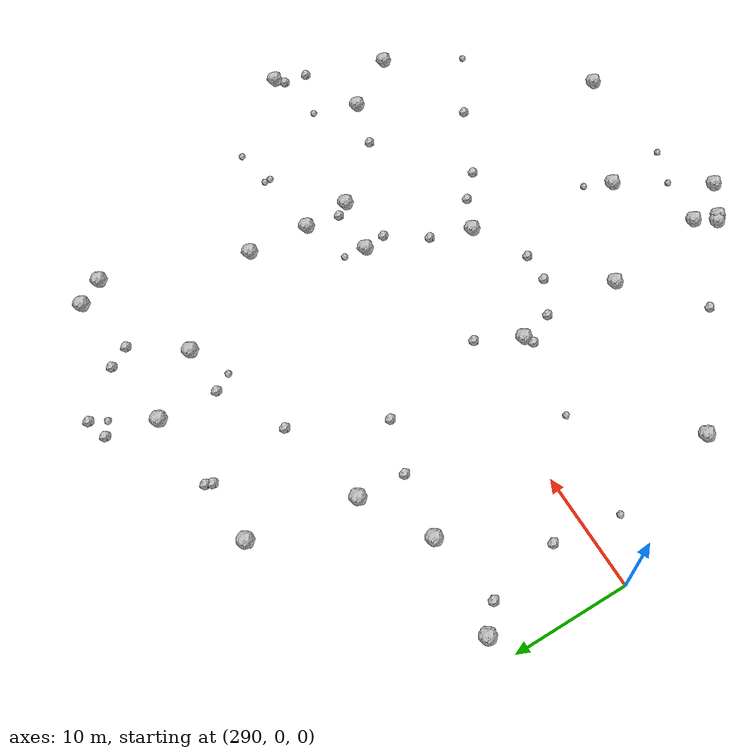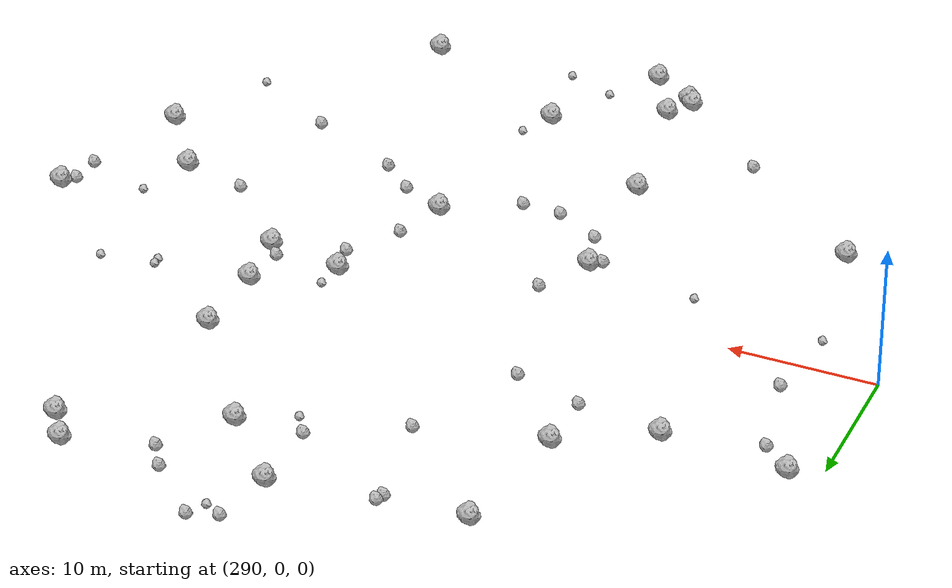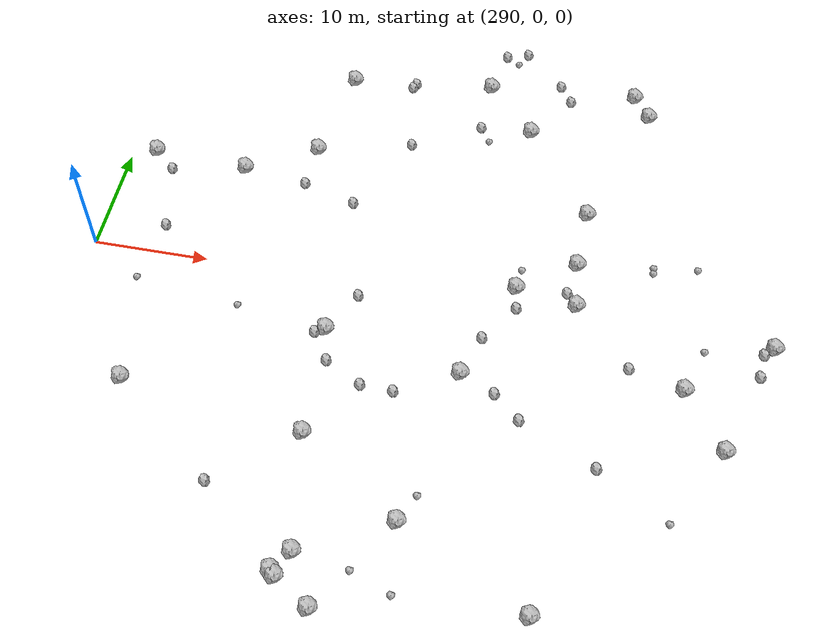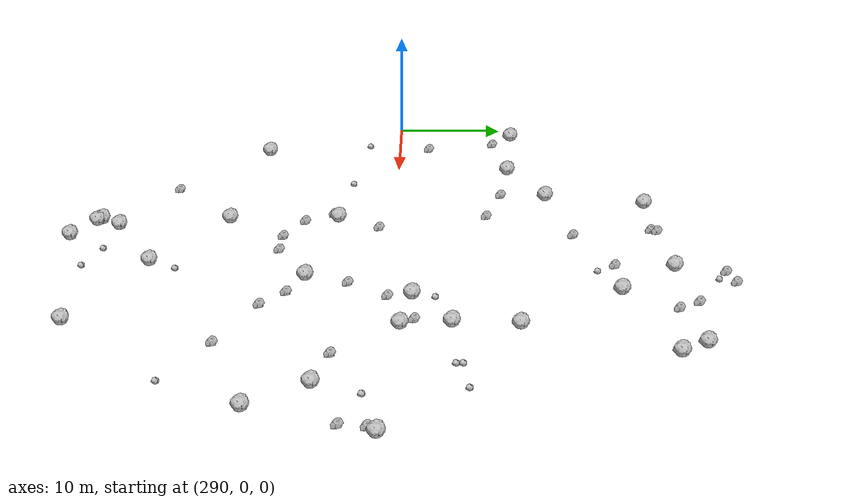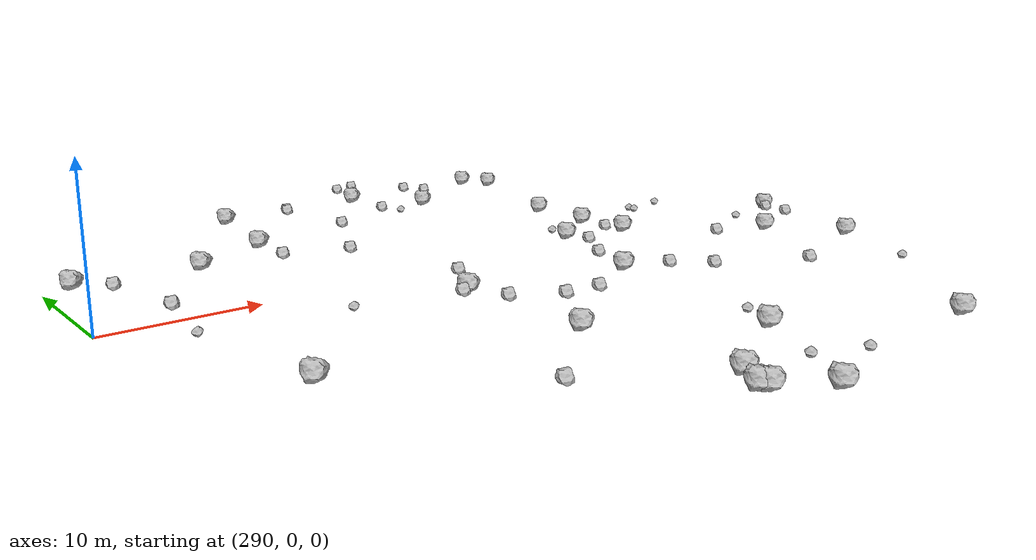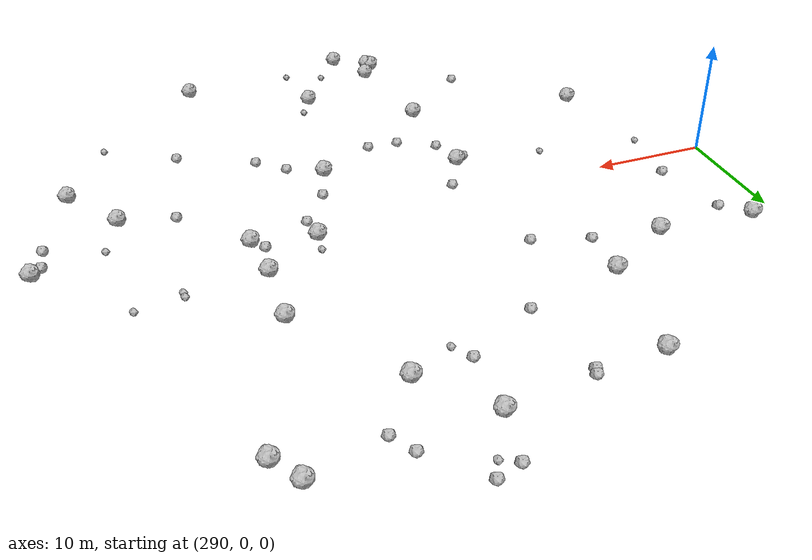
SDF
<sdf version="1.6">
 <world name="default">
  <include><uri>model://sun</uri></include>
  <model name="rock1_8_2">
   <include><uri>model://rock1</uri><pose>323.33679620474203 -7.51346255304745 0.5 0 0 0</pose></include>
  </model>
  <model name="rock1_8_3">
   <include><uri>model://rock1</uri><pose>312.68415560036976 -26.947948575536856 0.5 0 0 0</pose></include>
  </model>
  <model name="rock1_8_4">
   <include><uri>model://rock1</uri><pose>348.1030292278081 -0.4468466849667294 0.5 0 0 0</pose></include>
  </model>
  <model name="rock1_8_5">
   <include><uri>model://rock1</uri><pose>326.4726603340825 1.762520788364366 0.5 0 0 0</pose></include>
  </model>
  <model name="rock1_8_6">
   <include><uri>model://rock1</uri><pose>300.5648674382313 10.5266059348628 0.5 0 0 0</pose></include>
  </model>
  <model name="rock1_8_7">
   <include><uri>model://rock1</uri><pose>311.68105600414964 -5.27876061974689 0.5 0 0 0</pose></include>
  </model>
  <model name="rock1_8_8">
   <include><uri>model://rock1</uri><pose>334.05454349999343 25.685110030057174 0.5 0 0 0</pose></include>
  </model>
  <model name="rock1_8_9">
   <include><uri>model://rock1</uri><pose>313.0523109516355 -27.339910967802332 0.5 0 0 0</pose></include>
  </model>
  <model name="rock1_8_10">
   <include><uri>model://rock1</uri><pose>344.76542586847927 -10.824796059226937 0.5 0 0 0</pose></include>
  </model>
  <model name="rock1_8_11">
   <include><uri>model://rock1</uri><pose>331.6887364314367 0.8576998396895057 0.5 0 0 0</pose></include>
  </model>
  <model name="rock1_8_12">
   <include><uri>model://rock1</uri><pose>331.3921278197065 10.777687000325422 0.5 0 0 0</pose></include>
  </model>
  <model name="rock1_8_13">
   <include><uri>model://rock1</uri><pose>320.9716400386042 -21.36864309746488 0.5 0 0 0</pose></include>
  </model>
  <model name="rock1_8_14">
   <include><uri>model://rock1</uri><pose>320.6847937018871 24.540068998214878 0.5 0 0 0</pose></include>
  </model>
  <model name="rock1_8_15">
   <include><uri>model://rock1</uri><pose>292.138182599816 11.08206096626192 0.5 0 0 0</pose></include>
  </model>
  <model name="rock1_8_16">
   <include><uri>model://rock1</uri><pose>335.5612914989358 23.428526168749357 0.5 0 0 0</pose></include>
  </model>
  <model name="rock1_8_17">
   <include><uri>model://rock1</uri><pose>331.83191944397953 -26.995102065704526 0.5 0 0 0</pose></include>
  </model>
  <model name="rock1_8_18">
   <include><uri>model://rock1</uri><pose>341.2020084158971 -5.7741371102642525 0.5 0 0 0</pose></include>
  </model>
  <model name="rock1_8_19">
   <include><uri>model://rock1</uri><pose>296.5966223732026 -12.957748590994143 0.5 0 0 0</pose></include>
  </model>
  <model name="rock1_8_20">
   <include><uri>model://rock1</uri><pose>312.1713727765261 -15.216162189135618 0.5 0 0 0</pose></include>
  </model>
  <model name="rock1_8_21">
   <include><uri>model://rock1</uri><pose>316.07668444421444 -29.293621596896358 0.5 0 0 0</pose></include>
  </model>
  <model name="rock1_8_22">
   <include><uri>model://rock1</uri><pose>306.46609791008143 13.937577034601702 0.5 0 0 0</pose></include>
  </model>
  <model name="rock1_8_23">
   <include><uri>model://rock1</uri><pose>325.1361386132085 19.594636922495567 0.5 0 0 0</pose></include>
  </model>
  <model name="rock1_8_24">
   <include><uri>model://rock1</uri><pose>307.88927950543285 23.08952527467335 0.5 0 0 0</pose></include>
  </model>
  <model name="rock1_8_25">
   <include><uri>model://rock1</uri><pose>313.8462727533835 -25.188493622866474 0.5 0 0 0</pose></include>
  </model>
  <model name="rock1_8_26">
   <include><uri>model://rock1</uri><pose>331.226667260944 5.1314259976944925 0.5 0 0 0</pose></include>
  </model>
  <model name="rock2_8_0">
   <include><uri>model://rock2</uri><pose>318.34993794737034 -10.173183764403799 0.3 0 0 0</pose></include>
  </model>
  <model name="rock2_8_1">
   <include><uri>model://rock2</uri><pose>310.9508482666066 8.316299142789639 0.3 0 0 0</pose></include>
  </model>
  <model name="rock2_8_2">
   <include><uri>model://rock2</uri><pose>315.6193522749607 -10.048521876598826 0.3 0 0 0</pose></include>
  </model>
  <model name="rock2_8_3">
   <include><uri>model://rock2</uri><pose>306.26302848014853 9.756148879886432 0.3 0 0 0</pose></include>
  </model>
  <model name="rock2_8_4">
   <include><uri>model://rock2</uri><pose>305.85852537933073 -20.712692405162628 0.3 0 0 0</pose></include>
  </model>
  <model name="rock2_8_5">
   <include><uri>model://rock2</uri><pose>294.1210995781531 9.233257662764707 0.3 0 0 0</pose></include>
  </model>
  <model name="rock2_8_6">
   <include><uri>model://rock2</uri><pose>313.40759686850777 23.182533563749494 0.3 0 0 0</pose></include>
  </model>
  <model name="rock2_8_7">
   <include><uri>model://rock2</uri><pose>336.60785281704057 -4.5431590530632135 0.3 0 0 0</pose></include>
  </model>
  <model name="rock2_8_8">
   <include><uri>model://rock2</uri><pose>324.4733004400099 -3.7668910877537023 0.3 0 0 0</pose></include>
  </model>
  <model name="rock2_8_9">
   <include><uri>model://rock2</uri><pose>313.6336140473244 23.730459014497647 0.3 0 0 0</pose></include>
  </model>
  <model name="rock2_8_10">
   <include><uri>model://rock2</uri><pose>328.608217136117 -10.97922636700092 0.3 0 0 0</pose></include>
  </model>
  <model name="rock2_8_11">
   <include><uri>model://rock2</uri><pose>314.6928186065372 16.065411336203297 0.3 0 0 0</pose></include>
  </model>
  <model name="rock2_8_12">
   <include><uri>model://rock2</uri><pose>330.7565794191482 2.034231548521035 0.3 0 0 0</pose></include>
  </model>
  <model name="rock2_8_13">
   <include><uri>model://rock2</uri><pose>347.27270396119735 -1.1555841141186995 0.3 0 0 0</pose></include>
  </model>
  <model name="rock2_8_14">
   <include><uri>model://rock2</uri><pose>335.1131087608006 -14.13246317508722 0.3 0 0 0</pose></include>
  </model>
  <model name="rock2_8_15">
   <include><uri>model://rock2</uri><pose>320.5603834460495 19.348119483381794 0.3 0 0 0</pose></include>
  </model>
  <model name="rock2_8_16">
   <include><uri>model://rock2</uri><pose>323.44482593807066 29.526290023566325 0.3 0 0 0</pose></include>
  </model>
  <model name="rock2_8_17">
   <include><uri>model://rock2</uri><pose>326.7875902107368 -0.3013753726703854 0.3 0 0 0</pose></include>
  </model>
  <model name="rock2_8_18">
   <include><uri>model://rock2</uri><pose>328.2394838342575 24.104743187387385 0.3 0 0 0</pose></include>
  </model>
  <model name="rock2_8_19">
   <include><uri>model://rock2</uri><pose>321.5166680771575 28.884722916185083 0.3 0 0 0</pose></include>
  </model>
  <model name="rock2_8_20">
   <include><uri>model://rock2</uri><pose>312.447799414238 -8.27114915677528 0.3 0 0 0</pose></include>
  </model>
  <model name="rock2_8_21">
   <include><uri>model://rock2</uri><pose>310.8482479894969 -5.729434472856067 0.3 0 0 0</pose></include>
  </model>
  <model name="rock2_8_22">
   <include><uri>model://rock2</uri><pose>295.49669795979617 2.8675687714595597 0.3 0 0 0</pose></include>
  </model>
  <model name="rock2_8_23">
   <include><uri>model://rock2</uri><pose>347.0823744380613 -3.3614600167021536 0.3 0 0 0</pose></include>
  </model>
  <model name="rock2_8_24">
   <include><uri>model://rock2</uri><pose>313.59750231920304 -1.4696671508448809 0.3 0 0 0</pose></include>
  </model>
  <model name="rock2_8_25">
   <include><uri>model://rock2</uri><pose>326.3273745386598 -8.906477097688416 0.3 0 0 0</pose></include>
  </model>
  <model name="rock2_8_26">
   <include><uri>model://rock2</uri><pose>327.095844705747 25.899456882257923 0.3 0 0 0</pose></include>
  </model>
  <model name="rock3_8_0">
   <include><uri>model://rock3</uri><pose>303.8611341863625 -4.2539618147261535 0.2 0 0 0</pose></include>
  </model>
  <model name="rock3_8_1">
   <include><uri>model://rock3</uri><pose>322.0325735065384 -18.97571079463731 0.2 0 0 0</pose></include>
  </model>
  <model name="rock3_8_2">
   <include><uri>model://rock3</uri><pose>326.6408640416697 3.7217488941220225 0.2 0 0 0</pose></include>
  </model>
  <model name="rock3_8_3">
   <include><uri>model://rock3</uri><pose>337.6152479030481 6.008721027835932 0.2 0 0 0</pose></include>
  </model>
  <model name="rock3_8_4">
   <include><uri>model://rock3</uri><pose>321.71267312675684 -27.22800078438048 0.2 0 0 0</pose></include>
  </model>
  <model name="rock3_8_5">
   <include><uri>model://rock3</uri><pose>337.64763380484436 5.447805543031215 0.2 0 0 0</pose></include>
  </model>
  <model name="rock3_8_6">
   <include><uri>model://rock3</uri><pose>341.3403732231781 6.478251758249314 0.2 0 0 0</pose></include>
  </model>
  <model name="rock3_8_7">
   <include><uri>model://rock3</uri><pose>318.3576106997768 -25.89226652674064 0.2 0 0 0</pose></include>
  </model>
  <model name="rock3_8_8">
   <include><uri>model://rock3</uri><pose>321.5158419347831 17.76007508537174 0.2 0 0 0</pose></include>
  </model>
  <model name="rock3_8_9">
   <include><uri>model://rock3</uri><pose>342.4778232973713 -1.7870761709797947 0.2 0 0 0</pose></include>
  </model>
  <model name="rock3_8_10">
   <include><uri>model://rock3</uri><pose>322.71816410331235 28.1176857476855 0.2 0 0 0</pose></include>
  </model>
  <model name="rock3_8_11">
   <include><uri>model://rock3</uri><pose>341.0474108899529 -17.800414960750686 0.2 0 0 0</pose></include>
  </model>
  <model name="rock3_8_12">
   <include><uri>model://rock3</uri><pose>294.70370013738574 -3.0088305022956554 0.2 0 0 0</pose></include>
  </model>
 </world>
</sdf>
